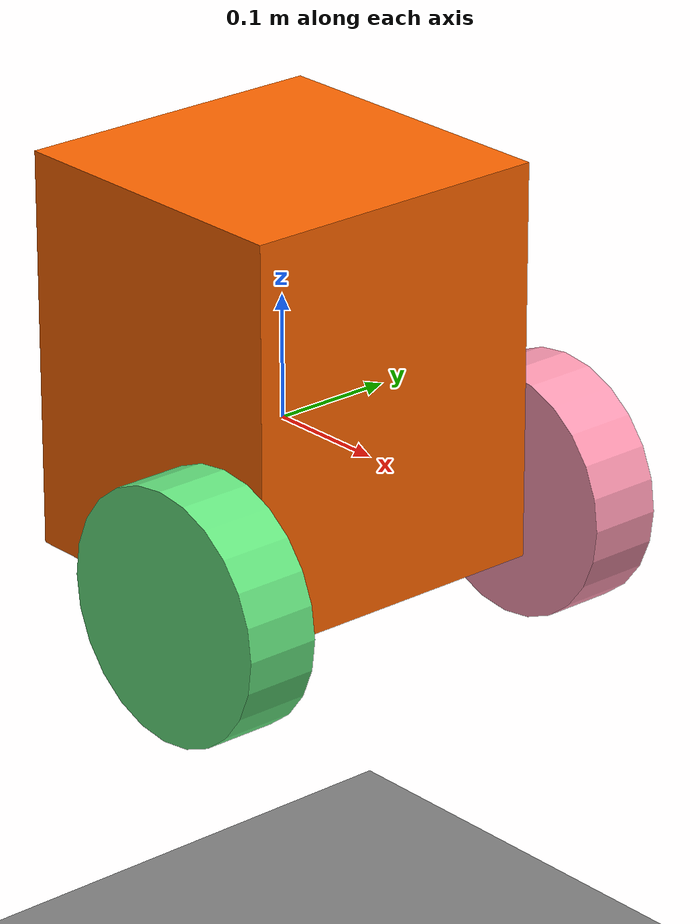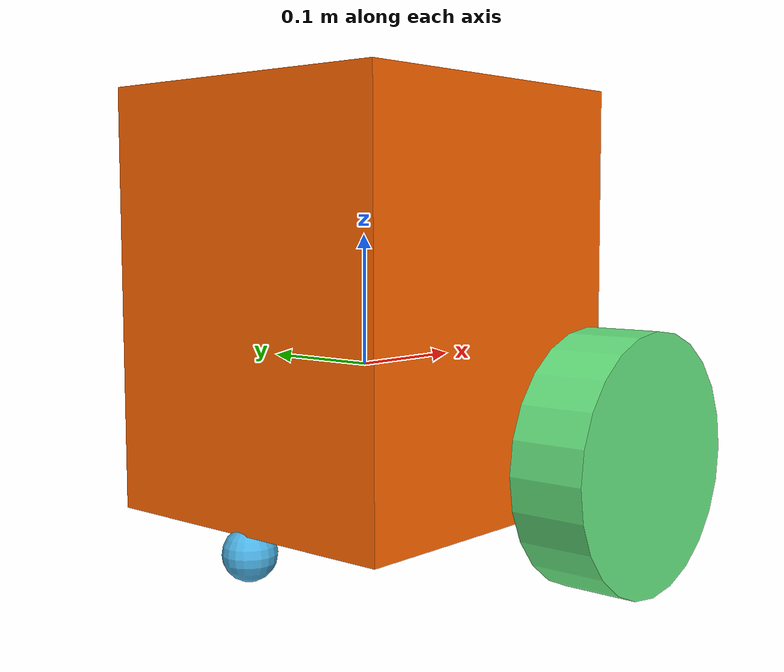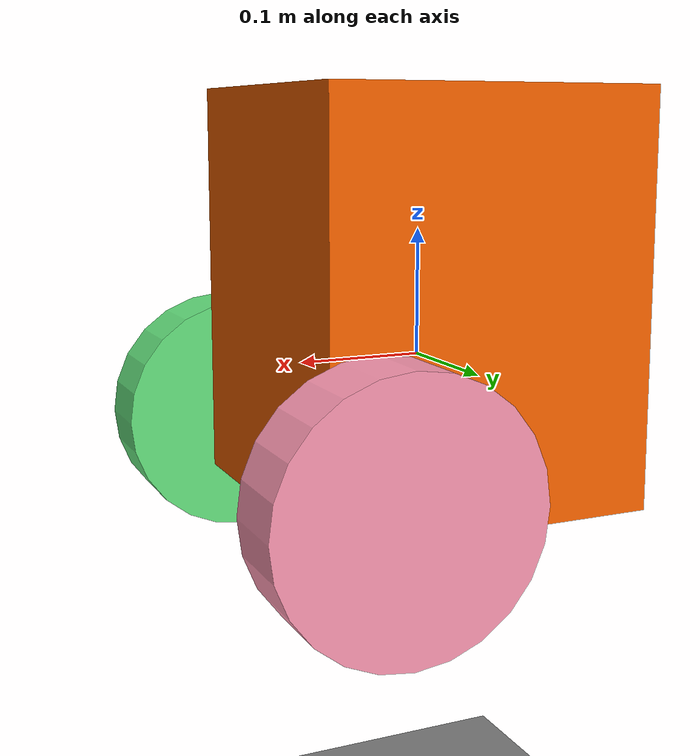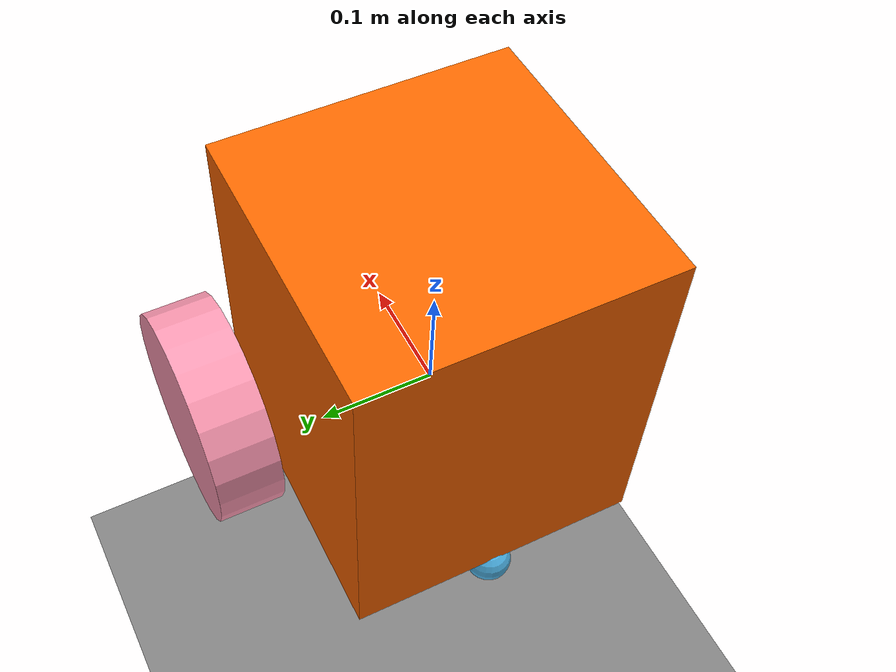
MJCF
<mujoco>
  <option density="1.204" viscosity="1.8e-5" integrator="implicit"/>
  <option gravity="0 0 -9.81"/>
  <visual>
    <global elevation="-10"/>
  </visual>
  <default>
    <tendon limited="true" width="0.003" rgba="1 1 1 1"/>
    <geom friction=".2"/>
    <default class="weight">
      <geom rgba=".8 .4 .8 1"/>
      <site rgba=".8 .4 .8 1"/>
    </default>
    <default class="balloon">
      <!--
        0.167 is the MKS density of helium at room temperature.
        Note this does not take into account the mass of the rubber,
        which is likely not insignificant.
      -->
      <geom density="0.167" fluidshape="ellipsoid"/>
      <default class="pink">
        <geom rgba="1 .6 .7 1"/>
        <site rgba="1 .6 .7 1"/>
      </default>
      <default class="blue">
        <geom rgba=".3 .7 .9 1"/>
        <site rgba=".3 .7 .9 1"/>
      </default>
      <default class="green">
        <geom rgba=".4 .9 .5 1"/>
        <site rgba=".4 .9 .5 1"/>
      </default>
      <default class="orange">
        <geom rgba="1 .4 0 1"/>
        <site rgba="1 .4 0 1"/>
      </default>
    </default>
  </default>
  <asset>
    <texture name="grid" type="2d" builtin="checker" width="512" height="512" rgb2="0 0 0" rgb1="1 1 1"/>
    <material name="grid" texture="grid" texrepeat="2 2" texuniform="true" reflectance=".6"/>
  </asset>

  <worldbody>
    <geom name="ground" type="plane" size="5 5 .05" pos="0 0 -.5" material="grid"/>

    <!-- 本体（ベース） -->
    <body name="tb3_base" pos="0 0 0.05" childclass="orange">
      <freejoint/>
      <geom name="base" type="box" size="0.13 0.13 0.16" mass="1.0"/>

      <!-- 左車輪 -->
      <body name="left_wheel" pos="0.1 0.17 -0.12" euler="90 0 0" childclass="pink">
        <joint name="left_wheel_hinge" type="hinge" axis="0 0 -1" damping="0.1"/>
        <geom name="left_wheel_geom" type="cylinder" size="0.1 0.03" density="500" friction="1.1"/>
      </body>

      <!-- 右車輪 -->
      <body name="right_wheel" pos="0.1 -0.17 -0.12" euler="90 0 0" childclass="green">
        <joint name="right_wheel_hinge" type="hinge" axis="0 0 -1" damping="0.1"/>
        <geom name="right_wheel_geom" type="cylinder" size="0.1 0.03" density="500" friction="1.1"/>
      </body>

      <!-- キャスター -->
      <body name="back_castor" pos="-0.12 0 -0.175" childclass="blue">
        <joint name="castor_yaw" type="hinge" axis="0 0 1" damping="0.1"/>
        <joint name="castor_pitch" type="hinge" axis="0 1 0" damping="0.1"/>
        <joint name="castor_roll" type="hinge" axis="1 0 0" damping="0.1"/>
        <geom name="castor" type="sphere" size="0.02" density="500" friction="0.5"/>
      </body>
    </body>
  </worldbody>
  <actuator>
    <!-- 左モーター（初期値5.0で回転） -->
    <motor name="left_motor" joint="left_wheel_hinge" ctrllimited="true" ctrlrange="-10 10"  gear = "1.0"/>

    <!-- 右モーター（初期値5.0で回転） -->
    <motor name="right_motor" joint="right_wheel_hinge" ctrllimited="true" ctrlrange="-10 10"  gear = "1.0"/>
  </actuator>
</mujoco>
